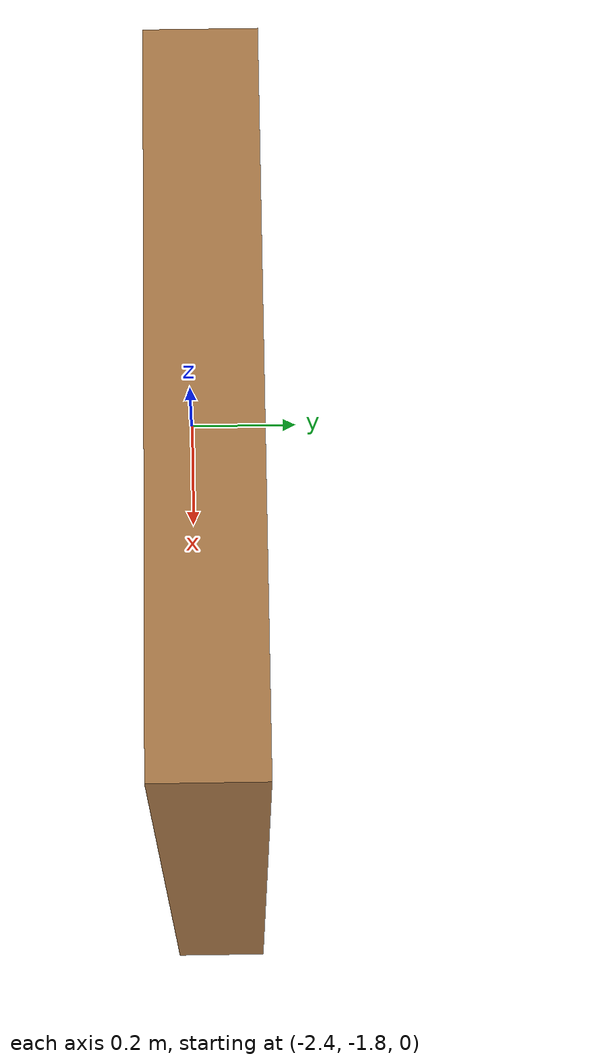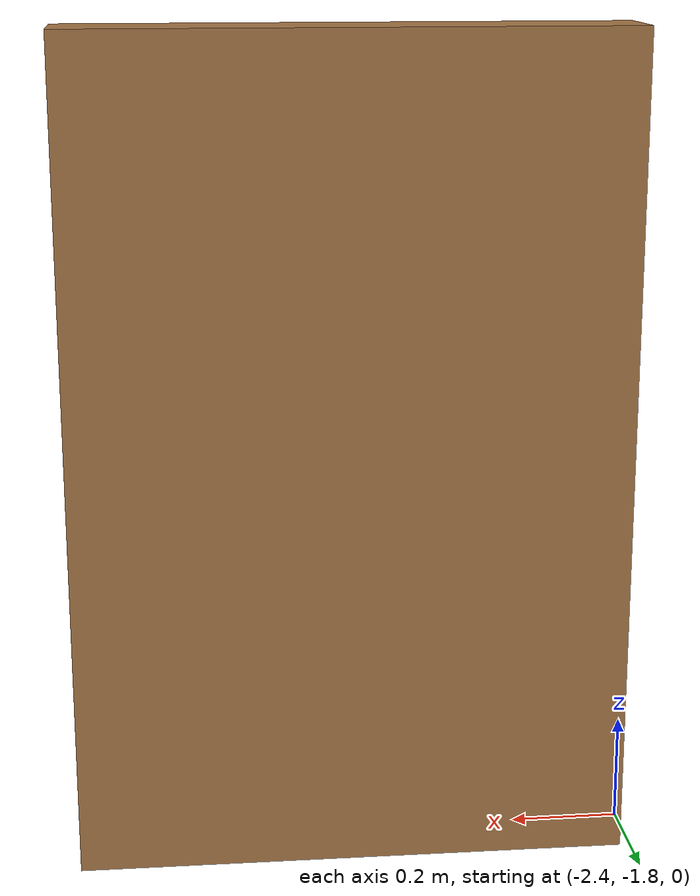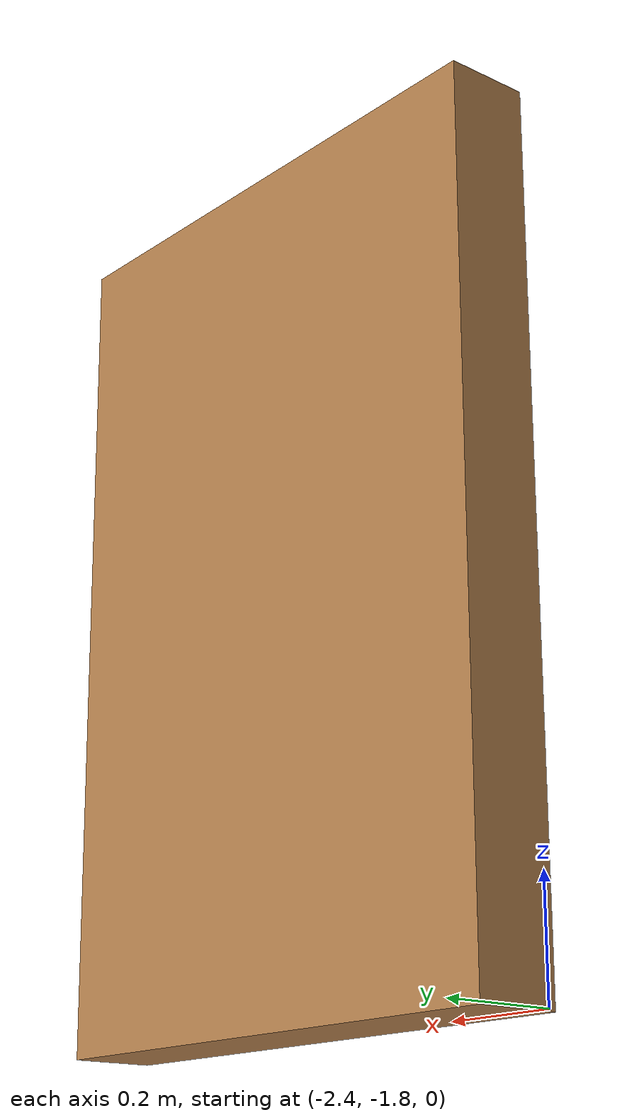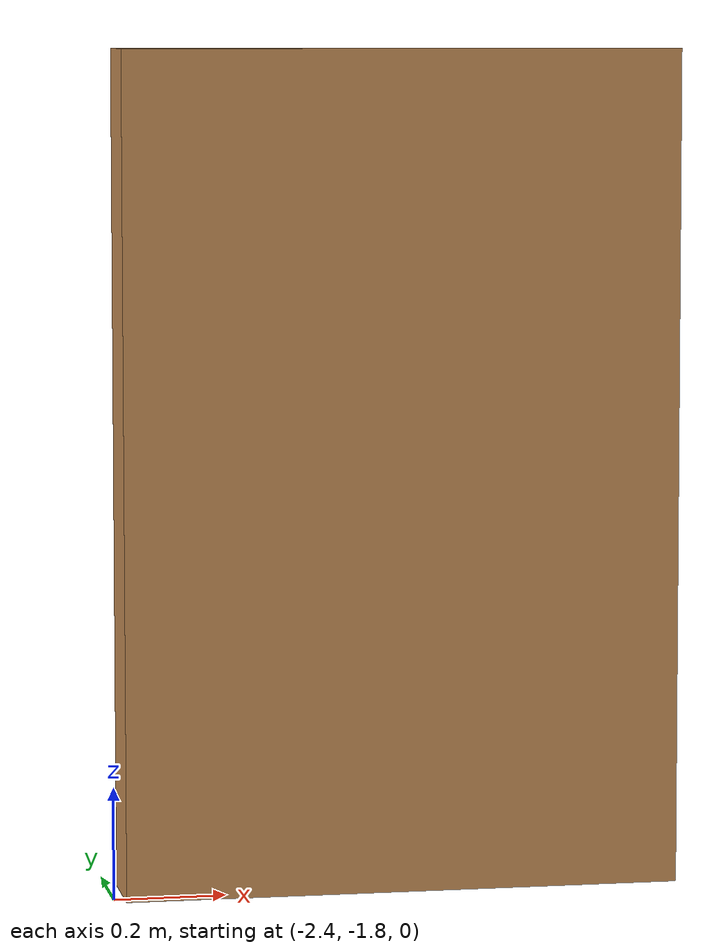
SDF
<?xml version='1.0'?>
<sdf version='1.6'>
  <model name='V'>
    <pose frame=''>-1.88197 -1.75596 0 0 -0 0</pose>
    <link name='Wall_48'>
      <collision name='Wall_48_Collision'>
        <geometry>
          <box>
            <size>1 0.15 1.5</size>
          </box>
        </geometry>
        <pose frame=''>0 0 0.75 0 -0 0</pose>
      </collision>
      <visual name='Wall_48_Visual'>
        <pose frame=''>0 0 0.75 0 -0 0</pose>
        <geometry>
          <box>
            <size>1 0.15 1.5</size>
          </box>
        </geometry>
        <material>
          <script>
            <uri>file://media/materials/scripts/gazebo.material</uri>
            <name>Gazebo/Wood</name>
          </script>
          <ambient>1 1 1 1</ambient>
        </material>
        <meta>
          <layer>0</layer>
        </meta>
      </visual>
      <pose frame=''>0 0 0 0 -0 0</pose>
    </link>
    <static>1</static>
  </model>
</sdf>
